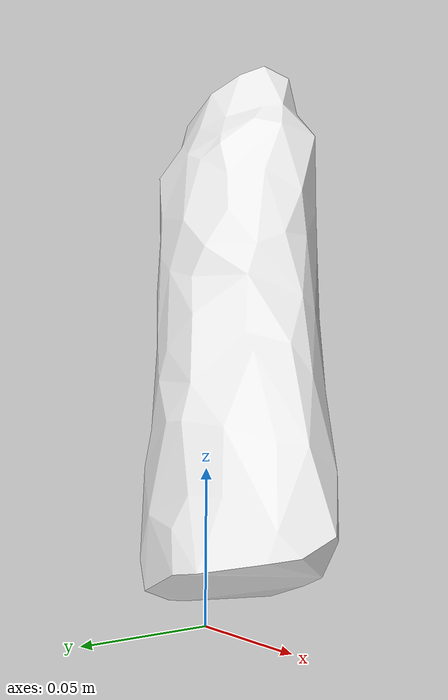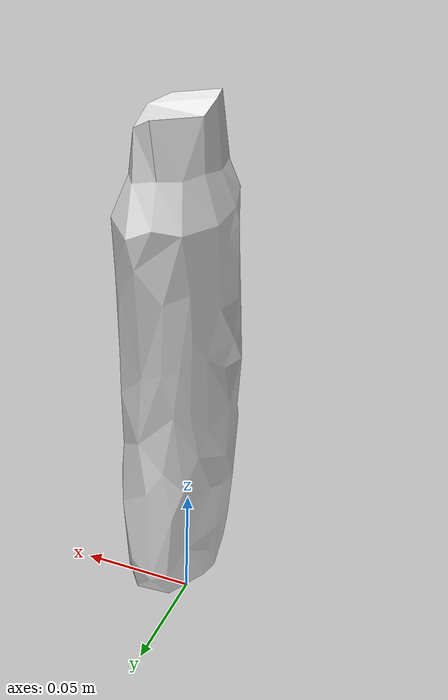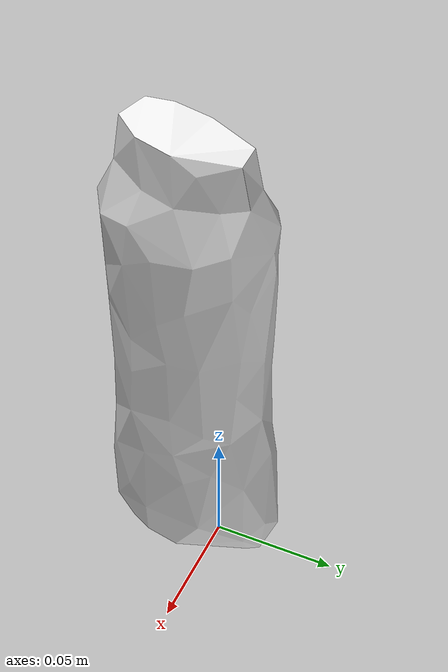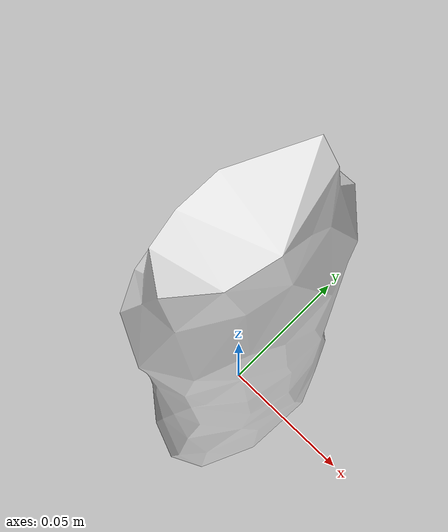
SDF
<?xml version='1.0'?>
<sdf version="1.4">
  <model name="white_rain_sensations_apple_blossom_hydrating_body_wash">
    <static>false</static>
    <link name="link">
      <inertial>
        <pose>0.00862925294933578 -0.0070691703495027215 0.10736031143443873 -3.1415414893108156 0.014932176266923456 -0.024855858226806225</pose>
        <mass>0.04757971492108156</mass>
        <inertia>
          <ixx>0.00023316808172818885</ixx>
          <ixy>-2.7824908010310186e-21</ixy>
          <ixz>1.3780567984920827e-21</ixz>
          <iyy>0.0002202606775281193</iyy>
          <iyz>1.063692348141233e-19</iyz>
          <izz>2.797709790488799e-05</izz>
        </inertia>
      </inertial>
      <collision name="collision">
        <geometry>
          <mesh>
            <!-- Use a downsampled mesh for collisions -->
            <uri>model:///white_rain_sensations_apple_blossom_hydrating_body_wash/white_rain_sensations_apple_blossom_hydrating_body_wash_250_collision.obj</uri>
	        </mesh>
        </geometry>
        <surface>
      </surface>
      </collision>
      <visual name="visual">
        <geometry>
          <mesh>
            <uri>model:///white_rain_sensations_apple_blossom_hydrating_body_wash/optimized_tsdf_texture_mapped_mesh.obj</uri>
	        </mesh>
        </geometry>
        <material>
          <script>
            <uri>model:///white_rain_sensations_apple_blossom_hydrating_body_wash/white_rain_sensations_apple_blossom_hydrating_body_wash.material</uri>
            <name>white_rain_sensations_apple_blossom_hydrating_body_wash</name>
          </script>
        </material>
      </visual>
    </link>
  </model>
</sdf>
